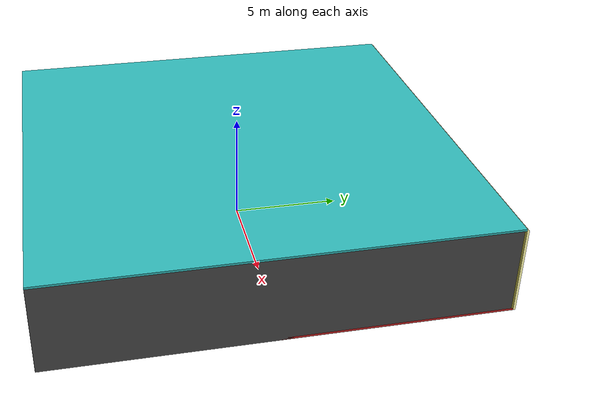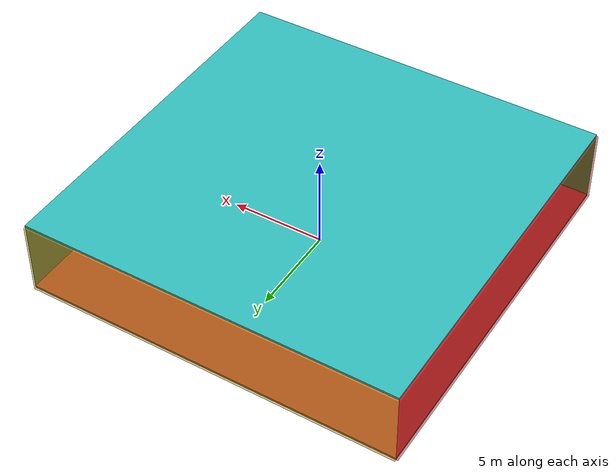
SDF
<sdf version="1.4">
 <world name="default">
  <physics type="ode">
   <max_step_size>0.001</max_step_size>
   <real_time_factor>1</real_time_factor>
   <real_time_update_rate>1000</real_time_update_rate>
   <gravity>0 0 -9.8</gravity>
  </physics>
  <scene><ambient>0.4 0.4 0.4 1</ambient><background>0.7 0.7 0.7 1</background><shadows>1</shadows></scene>
  <model name="Surrounding">
   <static>1</static>
   <link name="Ceiling">
    <collision name="Ceiling_Collision"><geometry><box><size>20 20 0.1</size></box></geometry></collision>
    <visual name="Ceiling_Visual">
     <geometry><box><size>20 20 0.1</size></box></geometry>
     <material>
      <script><uri>file://media/materials/scripts/gazebo.material</uri><name>Gazebo/TurquoiseGlow</name></script>
     </material>
    </visual>
    <pose>0 0 4.05 0 0 0</pose>
   </link>
   <link name="Wall_South">
    <collision name="Wall_South_Collision">
     <geometry><box><size>20 0 4</size></box></geometry>
     <pose>0 0 2 0 -0 0</pose>
    </collision>
    <visual name="Wall_South_Visual">
     <pose>0 0 2 0 -0 0</pose>
     <geometry><box><size>20 0 4</size></box></geometry>
     <material>
      <script><uri>file://media/materials/scripts/gazebo.material</uri><name>Gazebo/GreenGlow</name></script>
     </material>
    </visual>
    <velocity_decay><linear>0</linear><angular>0</angular></velocity_decay>
    <pose>0 -10 0 0 -0 0</pose>
   </link>
   <link name="Wall_East">
    <collision name="Wall_21_Collision">
     <geometry><box><size>20 0 4</size></box></geometry>
     <pose>0 0 2 0 -0 0</pose>
    </collision>
    <visual name="Wall_21_Visual">
     <pose>0 0 2 0 -0 0</pose>
     <geometry><box><size>20 0 4</size></box></geometry>
     <material>
      <script><uri>file://media/materials/scripts/gazebo.material</uri><name>Gazebo/DarkGrey</name></script>
     </material>
    </visual>
    <velocity_decay><linear>0</linear><angular>0</angular></velocity_decay>
    <pose>10 0 0 0 -0 1.5708</pose>
   </link>
   <link name="Wall_North">
    <collision name="Wall_22_Collision">
     <geometry><box><size>20 0.2 4</size></box></geometry>
     <pose>0 0 2 0 -0 0</pose>
    </collision>
    <visual name="Wall_22_Visual">
     <pose>0 0 2 0 -0 0</pose>
     <geometry><box><size>20 0.2 4</size></box></geometry>
     <material>
      <script>
       <uri>file://media/materials/scripts/gazebo.material</uri>
       <name>Gazebo/YellowTransparent</name>
      </script>
     </material>
    </visual>
    <velocity_decay><linear>0</linear><angular>0</angular></velocity_decay>
    <pose>0 10 0 0 -0 0</pose>
   </link>
   <link name="Wall_West">
    <collision name="Wall_23_Collision">
     <geometry><box><size>20 0.2 4</size></box></geometry>
     <pose>0 0 2 0 -0 0</pose>
    </collision>
    <visual name="Wall_23_Visual">
     <pose>0 0 2 0 -0 0</pose>
     <geometry><box><size>20 0.2 4</size></box></geometry>
     <material>
      <script><uri>file://media/materials/scripts/gazebo.material</uri><name>Gazebo/RedTransparent</name></script>
     </material>
    </visual>
    <velocity_decay><linear>0</linear><angular>0</angular></velocity_decay>
    <pose>-10 0 0 0 0 -1.5708</pose>
   </link>
   <link name="Ground_link">
    <collision name="collision">
     <pose>0 0 .05 0 -0 0</pose>
     <geometry><box><size>20 20 0.1</size></box></geometry>
    </collision>
    <visual name="visual">
     <pose>0 0 .05 0 -0 0</pose>
     <geometry><box><size>20 20 0.1</size></box></geometry>
     <material>
      <script><uri>file://media/materials/scripts/gazebo.material</uri><name>Gazebo/Red</name></script>
     </material>
    </visual>
   </link>
   <static>1</static>
  </model>
  <spherical_coordinates>
   <surface_model>EARTH_WGS84</surface_model>
   <latitude_deg>0</latitude_deg>
   <longitude_deg>0</longitude_deg>
   <elevation>0</elevation>
   <heading_deg>0</heading_deg>
  </spherical_coordinates>
  <light name="lightball_0" type="diffuse">
   <diffuse>0.8 0.8 0.8 1</diffuse>
   <specular>0.2 0.2 0.2 1</specular>
   <attenuation>
    <range>100</range>
    <constant>0.7</constant>
    <linear>0.01</linear>
    <quadratic>0.001</quadratic>
   </attenuation>
   <direction>-0.5 0.1 -0.9</direction>
   <pose>5.65184054356 -6.86549938055 3.00916520453 0 0 0</pose>
  </light>
  <light name="lightball_1" type="diffuse">
   <diffuse>0.8 0.8 0.8 1</diffuse>
   <specular>0.2 0.2 0.2 1</specular>
   <attenuation>
    <range>100</range>
    <constant>0.7</constant>
    <linear>0.01</linear>
    <quadratic>0.001</quadratic>
   </attenuation>
   <direction>-0.5 0.1 -0.9</direction>
   <pose>4.29962445676 8.0695850967 2.92610952065 0 0 0</pose>
  </light>
  <include><uri>model://cabinet</uri><pose>-4.30286318796 -1.47380454383 0 0 0 1.82526415172</pose></include>
  <include><uri>model://cabinet</uri><pose>7.98272632545 -6.94305307183 0 0 0 1.72543411867</pose></include>
  <include>
   <uri>model://construction_cone</uri>
   <pose>8.58206779848 5.31837885256 0 0 0 2.2211866524</pose>
  </include>
 </world>
</sdf>

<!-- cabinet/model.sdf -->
<sdf version="1.5">
  <model name="cabinet">
    <static>true</static>
    <link name="cabinet_bottom_plate">
      <inertial>
        <pose>0 0 -1 0 0 0</pose>
        <inertia>
          <ixx>2.050000</ixx>
          <ixy>0</ixy>
          <ixz>0</ixz>
          <iyy>2.050000</iyy>
          <iyz>0</iyz>
          <izz>2.050000</izz>
        </inertia>
        <mass>25.000000</mass>
      </inertial>
      <collision name="cabinet_bottom_plate_geom">
        <pose>0 0 0.010000 0 0 0</pose>
        <geometry>
          <box>
            <size>0.450000 0.450000 0.020000</size>
          </box>
        </geometry>
      </collision>
      <visual name="cabinet_bottom_plate_geom_visual">
        <pose>0 0 0.010000 0 0 0</pose>
        <geometry>
          <box>
            <size>0.450000 0.450000 0.020000</size>
          </box>
        </geometry>
        <material>
          <script>
            <uri>model://media/materials/scripts/gazebo.material</uri>
            <name>Gazebo/Wood</name>
          </script>
        </material>
      </visual>
      <collision name="cabinet_bottom_plate_geom_cabinet_back_plate">
        <pose>0.235000 0 0.510000 0 0 0</pose>
        <geometry>
          <box>
            <size>0.020000 0.450000 1.020000</size>
          </box>
        </geometry>
      </collision>
      <visual name="cabinet_bottom_plate_geom_cabinet_back_plate_visual">
        <pose>0.235000 0 0.510000 0 0 0</pose>
        <geometry>
          <box>
            <size>0.020000 0.450000 1.020000</size>
          </box>
        </geometry>
        <material>
          <script>
            <uri>model://media/materials/scripts/gazebo.material</uri>
            <name>Gazebo/Wood</name>
          </script>
        </material>
      </visual>
      <collision name="cabinet_bottom_plate_geom_cabinet_left_plate">
        <pose>0 0.235000 0.510000 0 0 0</pose>
        <geometry>
          <box>
            <size>0.450000 0.020000 1.020000</size>
          </box>
        </geometry>
      </collision>
      <visual name="cabinet_bottom_plate_geom_cabinet_left_plate_visual">
        <pose>0 0.235000 0.510000 0 0 0</pose>
        <geometry>
          <box>
            <size>0.450000 0.020000 1.020000</size>
          </box>
        </geometry>
        <material>
          <script>
            <uri>model://media/materials/scripts/gazebo.material</uri>
            <name>Gazebo/Wood</name>
          </script>
        </material>
      </visual>
      <collision name="cabinet_bottom_plate_geom_cabinet_middle_plate">
        <pose>0 0 0.510000 0 0 0</pose>
        <geometry>
          <box>
            <size>0.450000 0.450000 0.020000</size>
          </box>
        </geometry>
      </collision>
      <visual name="cabinet_bottom_plate_geom_cabinet_middle_plate_visual">
        <pose>0 0 0.510000 0 0 0</pose>
        <geometry>
          <box>
            <size>0.450000 0.450000 0.020000</size>
          </box>
        </geometry>
        <material>
          <script>
            <uri>model://media/materials/scripts/gazebo.material</uri>
            <name>Gazebo/Wood</name>
          </script>
        </material>
      </visual>
      <collision name="cabinet_bottom_plate_geom_cabinet_right_plate">
        <pose>0 -0.235000 0.510000 0 0 0</pose>
        <geometry>
          <box>
            <size>0.450000 0.020000 1.020000</size>
          </box>
        </geometry>
      </collision>
      <visual name="cabinet_bottom_plate_geom_cabinet_right_plate_visual">
        <pose>0 -0.235000 0.510000 0 0 0</pose>
        <geometry>
          <box>
            <size>0.450000 0.020000 1.020000</size>
          </box>
        </geometry>
        <material>
          <script>
            <uri>model://media/materials/scripts/gazebo.material</uri>
            <name>Gazebo/Wood</name>
          </script>
        </material>
      </visual>
      <collision name="cabinet_bottom_plate_geom_cabinet_top_plate">
        <pose>0 0 1.010000 0 0 0</pose>
        <geometry>
          <box>
            <size>0.450000 0.450000 0.020000</size>
          </box>
        </geometry>
      </collision>
      <visual name="cabinet_bottom_plate_geom_cabinet_top_plate_visual">
        <pose>0 0 1.010000 0 0 0</pose>
        <geometry>
          <box>
            <size>0.450000 0.450000 0.020000</size>
          </box>
        </geometry>
        <material>
          <script>
            <uri>model://media/materials/scripts/gazebo.material</uri>
            <name>Gazebo/Wood</name>
          </script>
        </material>
      </visual>
    </link>
  </model>
</sdf>

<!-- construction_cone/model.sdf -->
<sdf version="1.5">
  <model name="Construction Cone">
    <link name="link">
      <collision name="collision">
        <geometry>
          <mesh>
            <scale>10 10 10</scale>
            <uri>file://isr-testbed/construction_cone/meshes/construction_cone.dae</uri>
          </mesh>
        </geometry>
      </collision>
      <visual name="visual">
        <geometry>
          <mesh>
            <scale>10 10 10</scale>
            <uri>file://isr-testbed/construction_cone/meshes/construction_cone.dae</uri>
          </mesh>
        </geometry>
      </visual>
    </link>
  </model>
</sdf>
